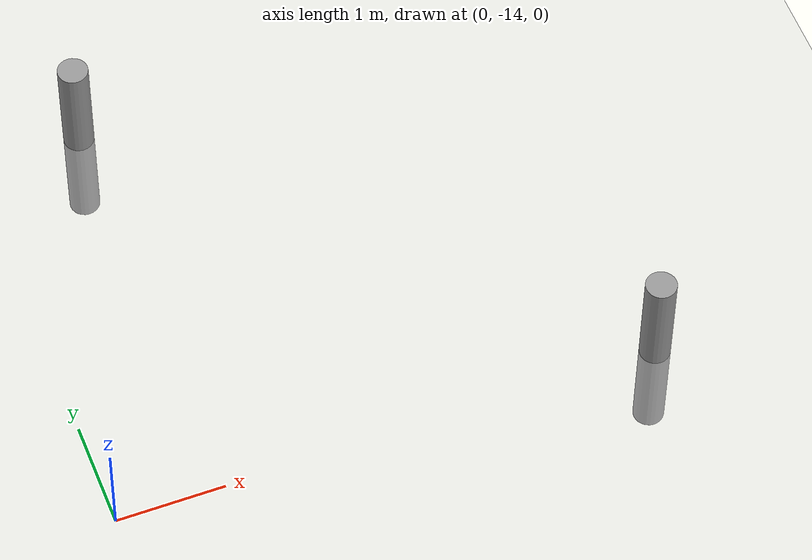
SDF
<sdf version="1.6">
 <world name="default">
  <model name="ground_plane">
   <static>1</static>
   <link name="link">
    <collision name="collision">
     <geometry><plane><normal>0 0 1</normal><size>100 100</size></plane></geometry>
     <surface><friction><ode><mu>100</mu><mu2>50</mu2></ode></friction></surface>
    </collision>
    <visual name="visual">
     <cast_shadows>0</cast_shadows>
     <geometry><plane><normal>0 0 1</normal><size>100 100</size></plane></geometry>
     <material>
      <script><uri>file://media/materials/scripts/gazebo.material</uri><name>Gazebo/Grey</name></script>
     </material>
    </visual>
   </link>
  </model>
  <model name="my_cylinder014_clone_10">
   <pose>5 -14 0 0 -0 0</pose>
   <link name="my_cylinder014::link">
    <inertial>
     <mass>1</mass>
     <inertia><ixx>0.145833</ixx><ixy>0</ixy><ixz>0</ixz><iyy>0.145833</iyy><iyz>0</iyz><izz>0.125</izz></inertia>
    </inertial>
    <visual name="visual">
     <geometry><cylinder><radius>0.14</radius><length>2</length></cylinder></geometry>
     <material>
      <script><name>Gazebo/Grey</name><uri>file://media/materials/scripts/gazebo.material</uri></script>
      <ambient>0.3 0.3 0.3 1</ambient>
      <diffuse>0.7 0.7 0.7 1</diffuse>
      <specular>1 0.01 0.01 1</specular>
      <emissive>0 0 0 1</emissive>
      <shader type="vertex"><normal_map>__default__</normal_map></shader>
     </material>
    </visual>
    <collision name="collision">
     <geometry><cylinder><radius>0.14</radius><length>2</length></cylinder></geometry>
     <surface>
      <friction>
       <ode><mu>1</mu><mu2>1</mu2><fdir1>0 0 0</fdir1><slip1>0</slip1><slip2>0</slip2></ode>
       <torsional>
        <coefficient>1</coefficient>
        <patch_radius>0</patch_radius>
        <surface_radius>0</surface_radius>
        <use_patch_radius>1</use_patch_radius>
        <ode><slip>0</slip></ode>
       </torsional>
      </friction>
      <bounce><restitution_coefficient>0</restitution_coefficient><threshold>1e+06</threshold></bounce>
      <contact>
       <collide_without_contact>0</collide_without_contact>
       <collide_without_contact_bitmask>1</collide_without_contact_bitmask>
       <collide_bitmask>1</collide_bitmask>
       <ode>
        <soft_cfm>0</soft_cfm>
        <soft_erp>0.2</soft_erp>
        <kp>1e+13</kp>
        <kd>1</kd>
        <max_vel>0.01</max_vel>
        <min_depth>0</min_depth>
       </ode>
       <bullet>
        <split_impulse>1</split_impulse>
        <split_impulse_penetration_threshold>-0.01</split_impulse_penetration_threshold>
        <soft_cfm>0</soft_cfm>
        <soft_erp>0.2</soft_erp>
        <kp>1e+13</kp>
        <kd>1</kd>
       </bullet>
      </contact>
     </surface>
    </collision>
   </link>
   <static>1</static>
  </model>
  <model name="my_cylinder014_clone_24">
   <pose>1 -10 0 0 -0 0</pose>
   <link name="my_cylinder014::link">
    <inertial>
     <mass>1</mass>
     <inertia><ixx>0.145833</ixx><ixy>0</ixy><ixz>0</ixz><iyy>0.145833</iyy><iyz>0</iyz><izz>0.125</izz></inertia>
    </inertial>
    <visual name="visual">
     <geometry><cylinder><radius>0.14</radius><length>2</length></cylinder></geometry>
     <material>
      <script><name>Gazebo/Grey</name><uri>file://media/materials/scripts/gazebo.material</uri></script>
      <ambient>0.3 0.3 0.3 1</ambient>
      <diffuse>0.7 0.7 0.7 1</diffuse>
      <specular>1 0.01 0.01 1</specular>
      <emissive>0 0 0 1</emissive>
      <shader type="vertex"><normal_map>__default__</normal_map></shader>
     </material>
    </visual>
    <collision name="collision">
     <geometry><cylinder><radius>0.14</radius><length>2</length></cylinder></geometry>
     <surface>
      <friction>
       <ode><mu>1</mu><mu2>1</mu2><fdir1>0 0 0</fdir1><slip1>0</slip1><slip2>0</slip2></ode>
       <torsional>
        <coefficient>1</coefficient>
        <patch_radius>0</patch_radius>
        <surface_radius>0</surface_radius>
        <use_patch_radius>1</use_patch_radius>
        <ode><slip>0</slip></ode>
       </torsional>
      </friction>
      <bounce><restitution_coefficient>0</restitution_coefficient><threshold>1e+06</threshold></bounce>
      <contact>
       <collide_without_contact>0</collide_without_contact>
       <collide_without_contact_bitmask>1</collide_without_contact_bitmask>
       <collide_bitmask>1</collide_bitmask>
       <ode>
        <soft_cfm>0</soft_cfm>
        <soft_erp>0.2</soft_erp>
        <kp>1e+13</kp>
        <kd>1</kd>
        <max_vel>0.01</max_vel>
        <min_depth>0</min_depth>
       </ode>
       <bullet>
        <split_impulse>1</split_impulse>
        <split_impulse_penetration_threshold>-0.01</split_impulse_penetration_threshold>
        <soft_cfm>0</soft_cfm>
        <soft_erp>0.2</soft_erp>
        <kp>1e+13</kp>
        <kd>1</kd>
       </bullet>
      </contact>
     </surface>
    </collision>
   </link>
   <static>1</static>
  </model>
  <model name="my_cylinder014_clone_24">
   <pose>1 -10 0 0 -0 0</pose>
   <link name="my_cylinder014::link">
    <inertial>
     <mass>1</mass>
     <inertia><ixx>0.145833</ixx><ixy>0</ixy><ixz>0</ixz><iyy>0.145833</iyy><iyz>0</iyz><izz>0.125</izz></inertia>
    </inertial>
    <visual name="visual">
     <geometry><cylinder><radius>0.14</radius><length>2</length></cylinder></geometry>
     <material>
      <script><name>Gazebo/Grey</name><uri>file://media/materials/scripts/gazebo.material</uri></script>
      <ambient>0.3 0.3 0.3 1</ambient>
      <diffuse>0.7 0.7 0.7 1</diffuse>
      <specular>1 0.01 0.01 1</specular>
      <emissive>0 0 0 1</emissive>
      <shader type="vertex"><normal_map>__default__</normal_map></shader>
     </material>
    </visual>
    <collision name="collision">
     <geometry><cylinder><radius>0.14</radius><length>2</length></cylinder></geometry>
     <surface>
      <friction>
       <ode><mu>1</mu><mu2>1</mu2><fdir1>0 0 0</fdir1><slip1>0</slip1><slip2>0</slip2></ode>
       <torsional>
        <coefficient>1</coefficient>
        <patch_radius>0</patch_radius>
        <surface_radius>0</surface_radius>
        <use_patch_radius>1</use_patch_radius>
        <ode><slip>0</slip></ode>
       </torsional>
      </friction>
      <bounce><restitution_coefficient>0</restitution_coefficient><threshold>1e+06</threshold></bounce>
      <contact>
       <collide_without_contact>0</collide_without_contact>
       <collide_without_contact_bitmask>1</collide_without_contact_bitmask>
       <collide_bitmask>1</collide_bitmask>
       <ode>
        <soft_cfm>0</soft_cfm>
        <soft_erp>0.2</soft_erp>
        <kp>1e+13</kp>
        <kd>1</kd>
        <max_vel>0.01</max_vel>
        <min_depth>0</min_depth>
       </ode>
       <bullet>
        <split_impulse>1</split_impulse>
        <split_impulse_penetration_threshold>-0.01</split_impulse_penetration_threshold>
        <soft_cfm>0</soft_cfm>
        <soft_erp>0.2</soft_erp>
        <kp>1e+13</kp>
        <kd>1</kd>
       </bullet>
      </contact>
     </surface>
    </collision>
   </link>
   <static>1</static>
  </model>
 </world>
</sdf>
